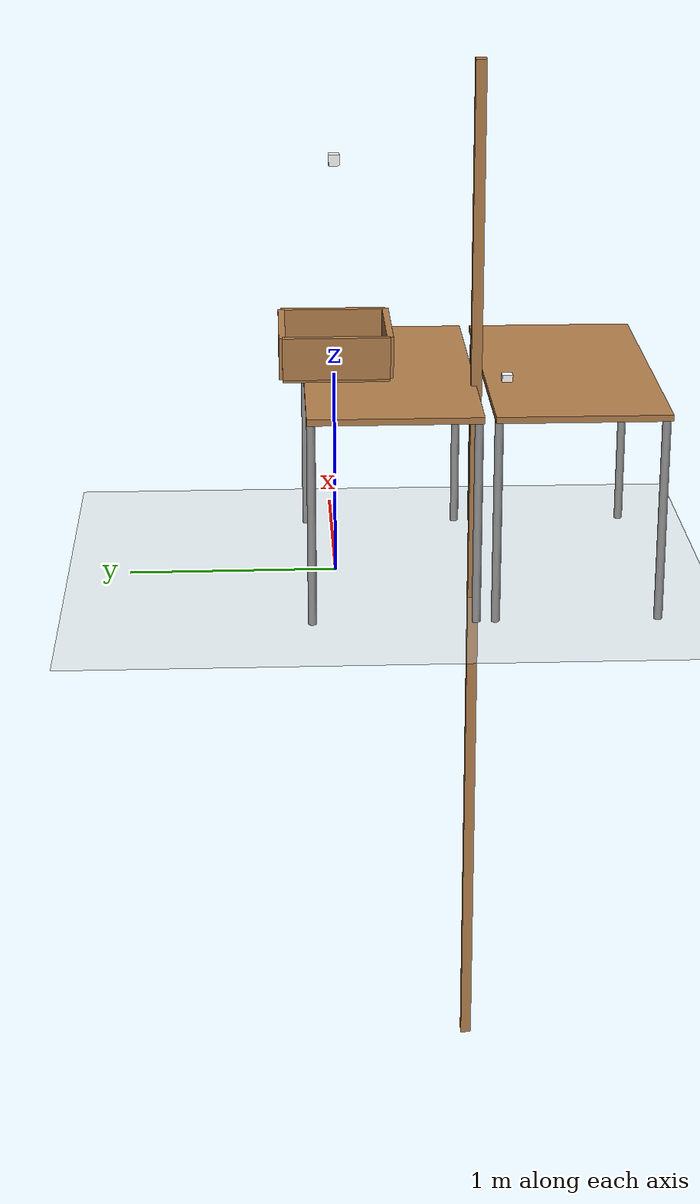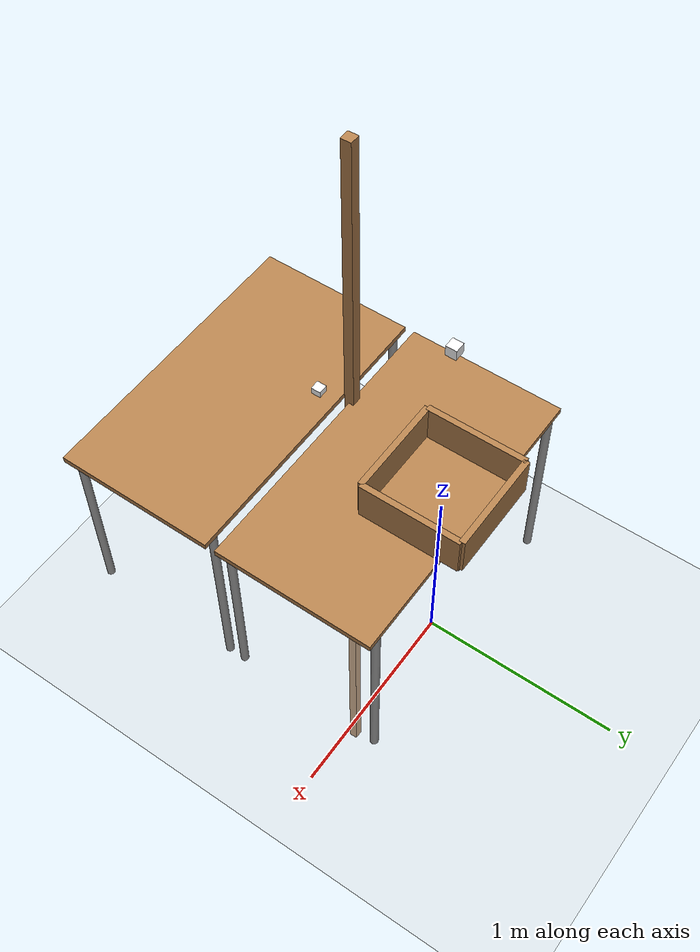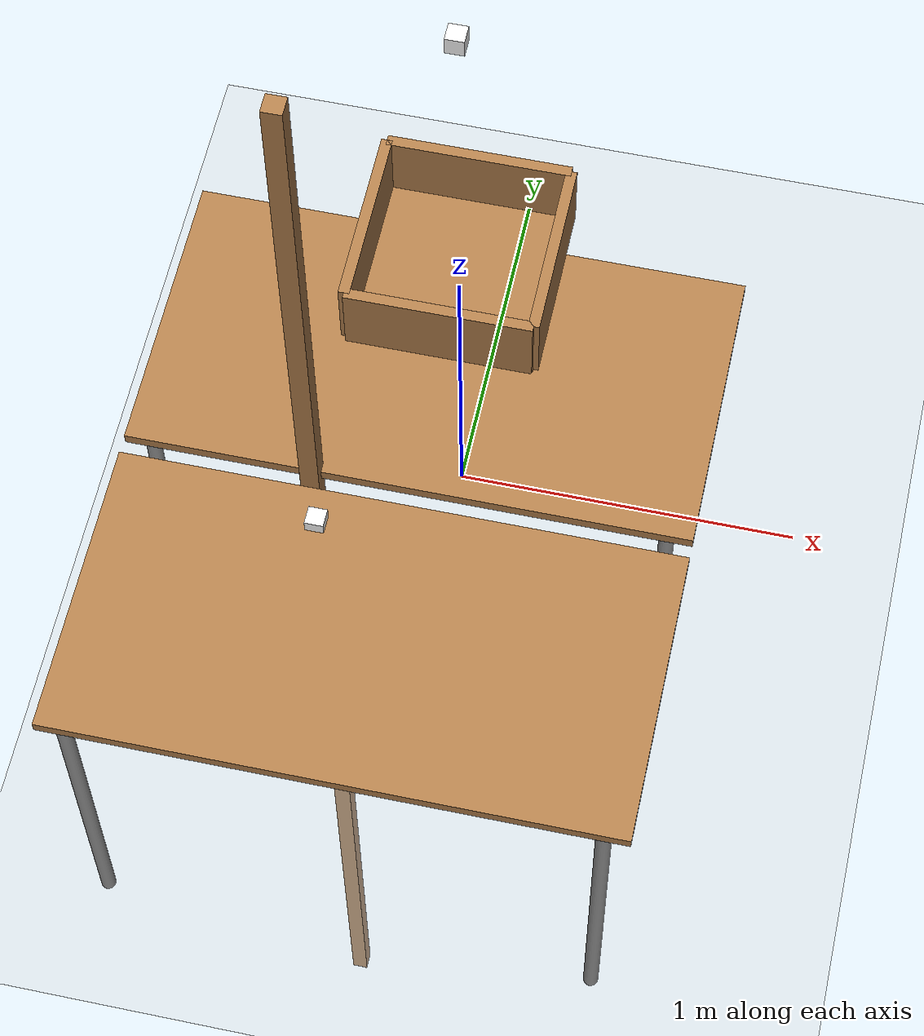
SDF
<sdf version="1.5">
 <world name="diplomski_svet_obstacle">
  <include><uri>model://sun</uri></include>
  <include><uri>model://ground_plane</uri><pose>0 0 -0.0405 0 0 0</pose></include>
  <include>
   <name>table1</name>
   <uri>model://table</uri>
   <static>false</static>
   <pose>0 -0.25 0.0 0 0 0</pose>
   <static>True</static>
  </include>
  <include>
   <name>table2</name>
   <uri>model://table</uri>
   <static>false</static>
   <pose>0 -1.1 -0.0 0 0 0</pose>
   <static>True</static>
  </include>
  <include>
   <uri>model://my_box</uri>
   <static>false</static>
   <pose>0 0.0 1.05 0 0 0</pose>
   <static>false</static>
  </include>
  <include>
   <name>wood_cube</name>
   <uri>model://wood_cube_5cm</uri>
   <static>false</static>
   <pose>-0.2 -0.8 1 0 0 0</pose>
   <static>false</static>
  </include>
  <include>
   <name>wood_cube1</name>
   <uri>model://wood_cube_5cm</uri>
   <static>false</static>
   <pose>0 0.0 2 0 0 0</pose>
   <static>false</static>
  </include>
  <include>
   <name>wood_cube_obstacle</name>
   <uri>model://wood_cube_obstacle</uri>
   <static>true</static>
   <pose>-0.25 -0.65 0 0 0 0</pose>
   <static>true</static>
  </include>
 </world>
</sdf>

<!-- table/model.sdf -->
<sdf version="1.5">
  <model name="table">
    <static>true</static>
    <link name="link">
      <collision name="surface">
        <pose>0 0 1.0 0 0 0</pose>
        <geometry>
          <box>
            <size>1.5 0.8 0.03</size>
          </box>
        </geometry>
        <surface>
          <friction>
            <ode>
              <mu>0.6</mu>
              <mu2>0.6</mu2>
            </ode>
          </friction>
        </surface>
      </collision>
      <visual name="visual1">
        <pose>0 0 1.0 0 0 0</pose>
        <geometry>
          <box>
            <size>1.5 0.8 0.03</size>
          </box>
        </geometry>
        <material>
          <script>
            <uri>model://media/materials/scripts/gazebo.material</uri>
            <name>Gazebo/Wood</name>
          </script>
        </material>
      </visual>
      <collision name="front_left_leg">
        <pose>0.68 0.38 0.5 0 0 0</pose>
        <geometry>
          <cylinder>
            <radius>0.02</radius>
            <length>1.0</length>
          </cylinder>
        </geometry>
      </collision>
      <visual name="front_left_leg">
        <pose>0.68 0.38 0.5 0 0 0</pose>
        <geometry>
          <cylinder>
            <radius>0.02</radius>
            <length>1.0</length>
          </cylinder>
        </geometry>
        <material>
          <script>
            <uri>model://media/materials/scripts/gazebo.material</uri>
            <name>Gazebo/Grey</name>
          </script>
        </material>
      </visual>
      <collision name="front_right_leg">
        <pose>0.68 -0.38 0.5 0 0 0</pose>
        <geometry>
          <cylinder>
            <radius>0.02</radius>
            <length>1.0</length>
          </cylinder>
        </geometry>
      </collision>
      <visual name="front_right_leg">
        <pose>0.68 -0.38 0.5 0 0 0</pose>
        <geometry>
          <cylinder>
            <radius>0.02</radius>
            <length>1.0</length>
          </cylinder>
        </geometry>
        <material>
          <script>
            <uri>model://media/materials/scripts/gazebo.material</uri>
            <name>Gazebo/Grey</name>
          </script>
        </material>
      </visual>
      <collision name="back_right_leg">
        <pose>-0.68 -0.38 0.5 0 0 0</pose>
        <geometry>
          <cylinder>
            <radius>0.02</radius>
            <length>1.0</length>
          </cylinder>
        </geometry>
      </collision>
      <visual name="back_right_leg">
        <pose>-0.68 -0.38 0.5 0 0 0</pose>
        <geometry>
          <cylinder>
            <radius>0.02</radius>
            <length>1.0</length>
          </cylinder>
        </geometry>
        <material>
          <script>
            <uri>model://media/materials/scripts/gazebo.material</uri>
            <name>Gazebo/Grey</name>
          </script>
        </material>
      </visual>
      <collision name="back_left_leg">
        <pose>-0.68 0.38 0.5 0 0 0</pose>
        <geometry>
          <cylinder>
            <radius>0.02</radius>
            <length>1.0</length>
          </cylinder>
        </geometry>
      </collision>
      <visual name="back_left_leg">
        <pose>-0.68 0.38 0.5 0 0 0</pose>
        <geometry>
          <cylinder>
            <radius>0.02</radius>
            <length>1.0</length>
          </cylinder>
        </geometry>
        <material>
          <script>
            <uri>model://media/materials/scripts/gazebo.material</uri>
            <name>Gazebo/Grey</name>
          </script>
        </material>
      </visual>
    </link>
  </model>
</sdf>

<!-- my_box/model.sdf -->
<sdf version="1.5">
  <model name="my_box">
    <static>true</static>
    <link name="link">
      <collision name="surface">
        <pose>0 0 0 0 0 0</pose>
        <geometry>
          <box>
            <size>0.5 0.5 0.03</size>
          </box>
        </geometry>
        <surface>
          <friction>
            <ode>
              <mu>0.6</mu>
              <mu2>0.6</mu2>
            </ode>
          </friction>
        </surface>
      </collision>
      <visual name="visual1">
        <pose>0 0 0 0 0 0</pose>
        <geometry>
          <box>
            <size>0.5 0.5 0.03</size>
          </box>
        </geometry>
        <material>
          <script>
            <uri>file://media/materials/scripts/gazebo.material</uri>
            <name>Gazebo/Wood</name>
          </script>
        </material>
      </visual>
      <collision name="front_left_leg">
        <pose>0 0.25 0.1 1.57 0 0</pose>
        <geometry>
          <box>
            <size>0.5 0.2 0.03</size>
          </box>
        </geometry>
      </collision>
      <visual name="front_left_leg">
        <pose>0 0.25 0.1 1.57 0 0</pose>
        <geometry>
          <box>
            <size>0.5 0.2 0.03</size>
          </box>
        </geometry>
        <material>
          <script>
            <uri>file://media/materials/scripts/gazebo.material</uri>
            <name>Gazebo/Wood</name>
          </script>
        </material>
      </visual>
      <collision name="front_right_leg">
        <pose>0.25 0 0.1 0 1.57 0</pose>
        <geometry>
          <box>
            <size>0.2 0.5 0.03</size>
          </box>
        </geometry>
      </collision>
      <visual name="front_right_leg">
        <pose>0.25 0 0.1 0 1.57 0</pose>
        <geometry>
          <box>
            <size>0.2 0.5 0.03</size>
          </box>
        </geometry>
        <material>
          <script>
            <uri>file://media/materials/scripts/gazebo.material</uri>
            <name>Gazebo/Wood</name>
          </script>
        </material>
      </visual>
      <collision name="back_right_leg">
        <pose>0 -0.25 0.1 1.57 0 0</pose>
        <geometry>
          <box>
            <size>0.5 0.2 0.03</size>
          </box>
        </geometry>
      </collision>
      <visual name="back_right_leg">
        <pose>0 -0.25 0.1 1.57 0 0</pose>
        <geometry>
          <box>
            <size>0.5 0.2 0.03</size>
          </box>
        </geometry>
        <material>
          <script>
            <uri>file://media/materials/scripts/gazebo.material</uri>
            <name>Gazebo/Wood</name>
          </script>
        </material>
      </visual>
      <collision name="back_left_leg">
        <pose>-0.25 0 0.1 0 1.57 0</pose>
        <geometry>
          <box>
            <size>0.2 0.5 0.03</size>
          </box>
        </geometry>
      </collision>
      <visual name="back_left_leg">
        <pose>-0.25 0 0.1 0 1.57 0</pose>
        <geometry>
          <box>
            <size>0.2 0.5 0.03</size>
          </box>
        </geometry>
        <material>
          <script>
            <uri>file://media/materials/scripts/gazebo.material</uri>
            <name>Gazebo/Wood</name>
          </script>
        </material>
      </visual>
    </link>
  </model>
</sdf>

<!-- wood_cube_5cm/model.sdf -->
<sdf version="1.5">
  <model name="wood_cube_5cm">
    <link name="link">
      <pose>0 0 0.025 0 0 0</pose>
      <inertial>
        <mass>0.0565</mass>
        <inertia>
          <ixx>2.3541666666666672e-05</ixx>
          <ixy>0</ixy>
          <ixz>0</ixz>
          <iyy>2.3541666666666672e-05</iyy>
          <iyz>0</iyz>
          <izz>2.3541666666666672e-05</izz>
        </inertia>
      </inertial>

      <collision name="collision">
        <geometry>
          <box>
            <size>0.05 0.05 0.05</size>
          </box>
        </geometry>
        <surface>
          <contact>
            <!-- Red Pine coefficients for longitudinal axis of the wood
                 according to:
                 http://www.fpl.fs.fed.us/documnts/fplgtr/fplgtr113/ch04.pdf -->
            <poissons_ratio>0.347</poissons_ratio>
            <elastic_modulus>8.8e+09</elastic_modulus>
            <ode>
              <kp>100000</kp>
              <kd>1</kd>
              <max_vel>1.0</max_vel>
              <min_depth>0.001</min_depth>
            </ode>
          </contact>
          <friction>
            <torsional>
              <coefficient>1.0</coefficient>
              <use_patch_radius>0</use_patch_radius>
              <surface_radius>0.05</surface_radius>
            </torsional>
          </friction>
        </surface>
      </collision>

      <visual name="visual">
        <geometry>
          <box>
            <size>0.05 0.05 0.05</size>
          </box>
        </geometry>
        <material><diffuse>1 1 1 1</diffuse><specular>0.1 0.1 0.1 1</specular></material>
      </visual>

    </link>
  </model>
</sdf>

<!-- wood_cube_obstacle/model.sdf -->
<sdf version="1.5">
  <model name="wood_cube_obstacle">
    <link name="link">
      <pose>0 0 0.025 0 0 0</pose>
      <inertial>
        <mass>1.0</mass>
        <inertia>
          <ixx>2.3541666666666672e-05</ixx>
          <ixy>0</ixy>
          <ixz>0</ixz>
          <iyy>2.3541666666666672e-05</iyy>
          <iyz>0</iyz>
          <izz>2.3541666666666672e-05</izz>
        </inertia>
      </inertial>

      <collision name="collision">
        <geometry>
          <box>
            <size>0.05 0.05 5.0</size>
          </box>
        </geometry>
        <surface>
          <contact>
            <!-- Red Pine coefficients for longitudinal axis of the wood
                 according to:
                 http://www.fpl.fs.fed.us/documnts/fplgtr/fplgtr113/ch04.pdf -->
            <poissons_ratio>0.347</poissons_ratio>
            <elastic_modulus>8.8e+09</elastic_modulus>
            <ode>
              <kp>100000</kp>
              <kd>1</kd>
              <max_vel>1.0</max_vel>
              <min_depth>0.001</min_depth>
            </ode>
          </contact>
          <friction>
            <torsional>
              <coefficient>1.0</coefficient>
              <use_patch_radius>0</use_patch_radius>
              <surface_radius>0.05</surface_radius>
            </torsional>
          </friction>
        </surface>
      </collision>

      <visual name="visual">
        <geometry>
          <box>
            <size>0.05 0.05 5.0</size>
          </box>
        </geometry>
        <material>
          <script>
            <uri>file://media/materials/scripts/gazebo.material</uri>
            <name>Gazebo/Wood</name>
          </script>
        </material>
      </visual>

    </link>
  </model>
</sdf>
